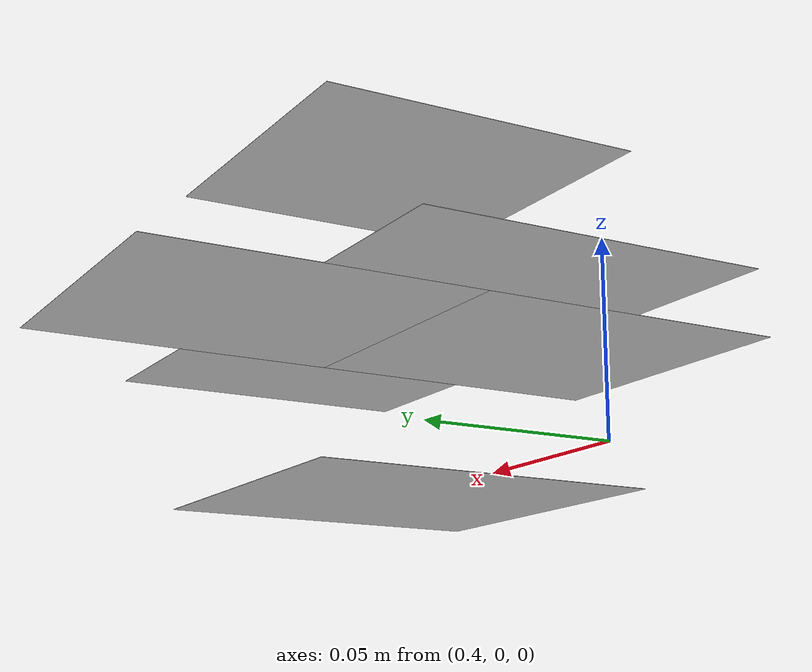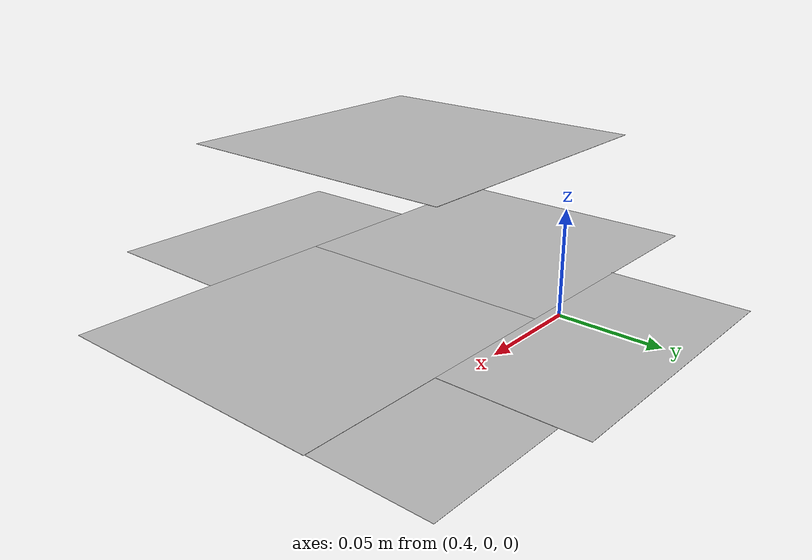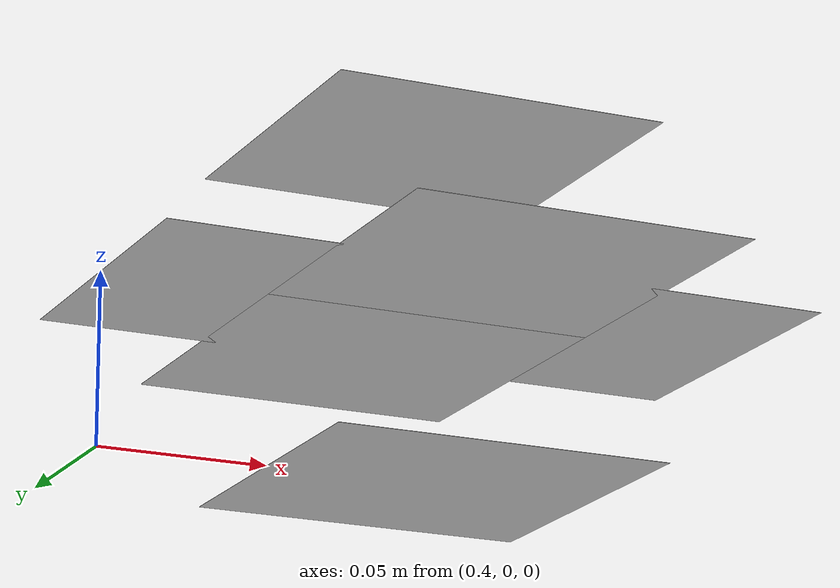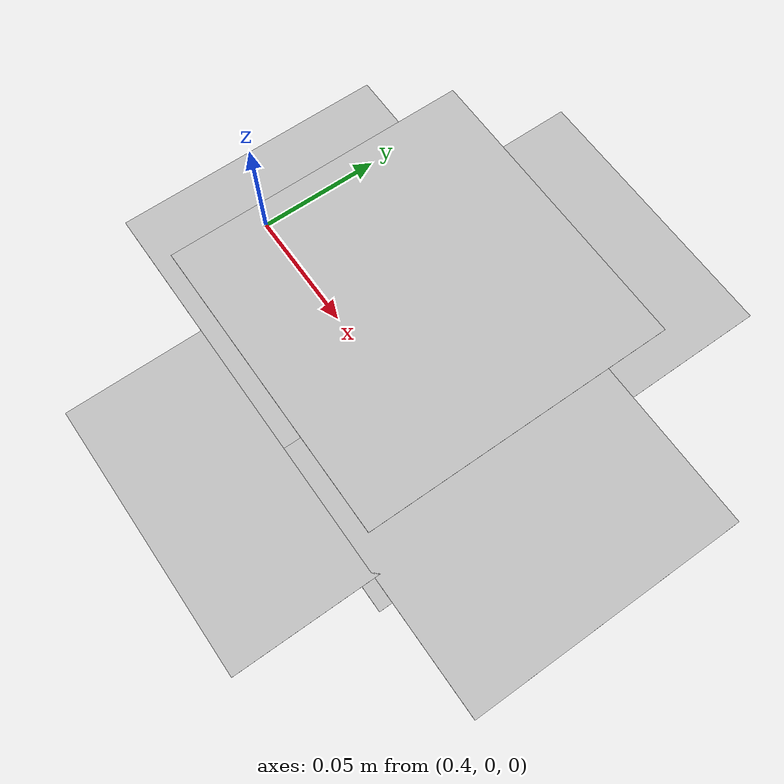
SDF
<?xml version="1.0"?>
<sdf version="1.6">
  <model name="aruco_cube">
    <pose>0.5 0.0 0.05 0.0 0.0 0.0</pose>
    <static>false</static>

    <link name="link">
      <inertial>
        <mass>0.5</mass>
        <inertia>
          <ixx>0.000833</ixx>
          <ixy>0.0</ixy>
          <ixz>0.0</ixz>
          <iyy>0.000833</iyy>
          <iyz>0.0</iyz>
          <izz>0.000833</izz>
        </inertia>
      </inertial>

      <!-- Collision shape -->
      <collision name="collision">
        <geometry>
          <box>
            <size>0.1 0.1 0.1</size>
          </box>
        </geometry>
      </collision>

      <!-- Visual with ArUco marker on each face -->
      <!-- Top face (+Z) -->
      <visual name="visual_top">
        <pose>0 0 0.05 0 0 0</pose>
        <geometry>
          <plane>
            <normal>0 0 1</normal>
            <size>0.1 0.1</size>
          </plane>
        </geometry>
        <material>
          <script>
            <uri>model://aruco_cube/marker.svg</uri>
          </script>
        </material>
      </visual>

      <!-- Bottom face (-Z) -->
      <visual name="visual_bottom">
        <pose>0 0 -0.05 0 0 0</pose>
        <geometry>
          <plane>
            <normal>0 0 -1</normal>
            <size>0.1 0.1</size>
          </plane>
        </geometry>
        <material>
          <script>
            <uri>model://aruco_cube/marker.svg</uri>
          </script>
        </material>
      </visual>

      <!-- Front face (+X) -->
      <visual name="visual_front">
        <pose>0.05 0 0 0 1.5708 0</pose>
        <geometry>
          <plane>
            <normal>1 0 0</normal>
            <size>0.1 0.1</size>
          </plane>
        </geometry>
        <material>
          <script>
            <uri>model://aruco_cube/marker.svg</uri>
          </script>
        </material>
      </visual>

      <!-- Back face (-X) -->
      <visual name="visual_back">
        <pose>-0.05 0 0 0 -1.5708 0</pose>
        <geometry>
          <plane>
            <normal>-1 0 0</normal>
            <size>0.1 0.1</size>
          </plane>
        </geometry>
        <material>
          <script>
            <uri>model://aruco_cube/marker.svg</uri>
          </script>
        </material>
      </visual>

      <!-- Right face (+Y) -->
      <visual name="visual_right">
        <pose>0 0.05 0 1.5708 0 0</pose>
        <geometry>
          <plane>
            <normal>0 1 0</normal>
            <size>0.1 0.1</size>
          </plane>
        </geometry>
        <material>
          <script>
            <uri>model://aruco_cube/marker.svg</uri>
          </script>
        </material>
      </visual>

      <!-- Left face (-Y) -->
      <visual name="visual_left">
        <pose>0 -0.05 0 -1.5708 0 0</pose>
        <geometry>
          <plane>
            <normal>0 -1 0</normal>
            <size>0.1 0.1</size>
          </plane>
        </geometry>
        <material>
          <script>
            <uri>model://aruco_cube/marker.svg</uri>
          </script>
        </material>
      </visual>

    </link>
  </model>
</sdf>
